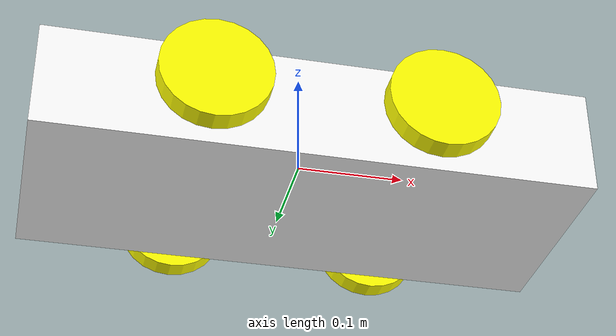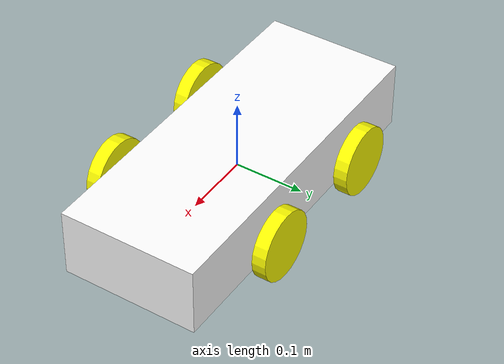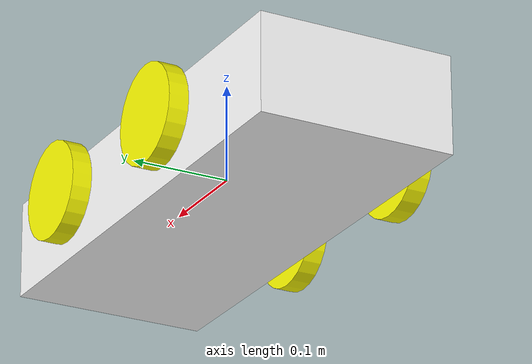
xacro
<robot name="robot_car" xmlns:xacro="http://ros.org/wiki/xacro">

  <xacro:include filename="$(find vis_lecture)/urdf/wheel/wheel.urdf.xacro"/>
  <xacro:include filename="$(find vis_lecture)/urdf/body/body.urdf.xacro"/>

  <link name="base_footprint"/>

  <xacro:base parent="base_footprint">
    <origin xyz="0 0 0"/>
  </xacro:base>

  <xacro:wheel prefix="front_right_wheel" parent="body_link">
    <origin xyz="0.1 -0.13 0.0" rpy="1.57 0 0" />
    <axis xyz="0 0 -1" />
  </xacro:wheel>

  <xacro:wheel prefix="rear_right_wheel" parent="body_link">
    <origin xyz="-0.1 -0.13 0.0" rpy="1.57 0 0" />
    <axis xyz="0 0 -1" />
  </xacro:wheel>

  <xacro:wheel prefix="front_left_wheel" parent="body_link">
    <origin xyz="0.1 0.13 0.0" rpy="-1.57 0 0" />
    <axis xyz="0 0 1" />
  </xacro:wheel>

  <xacro:wheel prefix="rear_left_wheel" parent="body_link">
    <origin xyz="-0.1 0.13 0.0" rpy="-1.57 0 0" />
    <axis xyz="0 0 1" />
  </xacro:wheel>

</robot>

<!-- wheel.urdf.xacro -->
<robot xmlns:xacro="http://ros.org/wiki/xacro">

  <xacro:property name="radius" value="0.05"/>
  <xacro:property name="length" value="0.02"/>

  <xacro:macro name="wheel" params="prefix parent *joint_origin *joint_axis">
    <joint name="${prefix}_joint" type="fixed">
      <xacro:insert_block name="joint_origin" />
      <xacro:insert_block name="joint_axis" />
      <parent link="${parent}" />
      <child link="${prefix}_link" />
    </joint>

    <link name="${prefix}_link">
      <visual>
        <geometry>
          <cylinder radius="${radius}" length="${length}"/>
        </geometry>
        <material name="yellow">
          <color rgba="1 1 0 1"/>
        </material>
      </visual>

      <collision>
        <geometry>
          <cylinder radius="${radius}" length="${length}"/>
        </geometry>
      </collision>

      <inertial>
        <origin xyz="0.0 0.0 0.0" />
        <mass value="0.500"/>
        <inertia ixx="0.0013541667" ixy="0" ixz="0" iyy="0.0013541667" iyz="0" izz="0.0025"/>
      </inertial>
    </link>
  </xacro:macro>
</robot>

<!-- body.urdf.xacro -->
<robot xmlns:xacro="http://ros.org/wiki/xacro">
  <xacro:property name="M_PI" value="3.1415926535897931" />
  <xacro:property name="velocity_scale_factor" value="1.0"/>
  <xacro:macro name="base" params="parent *joint_origin">
    <joint name="base_joint" type="fixed">
      <xacro:insert_block name="joint_origin"/>
      <parent link="${parent}"/>
      <child link="body_link"/>
    </joint>

    <link name="body_link">
      <visual>
        <geometry>
          <box size="0.500 0.200 0.100"/>
        </geometry>
        <material name="gray">
          <color rgba="1 1 1 1"/>
        </material>
      </visual>

      <collision>
        <geometry>
          <box size="0.500 0.200 0.100"/>
        </geometry>
      </collision>

      <inertial>
        <origin xyz="0 0 0"/>
        <mass value="0.6"/>
        <inertia ixx="1e-3" ixy="0" ixz="0" iyy="1e-3" iyz="0" izz="1e-3"/>
      </inertial>
    </link>
  </xacro:macro>
</robot>
